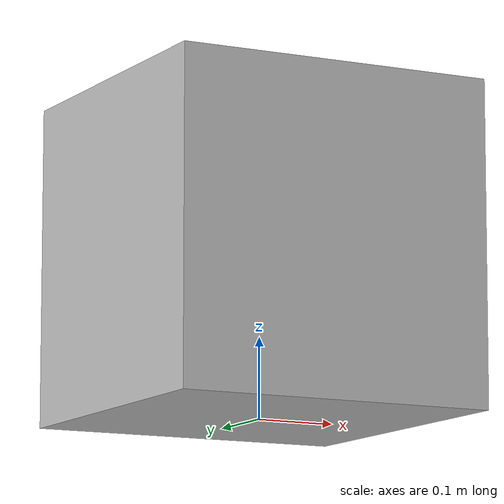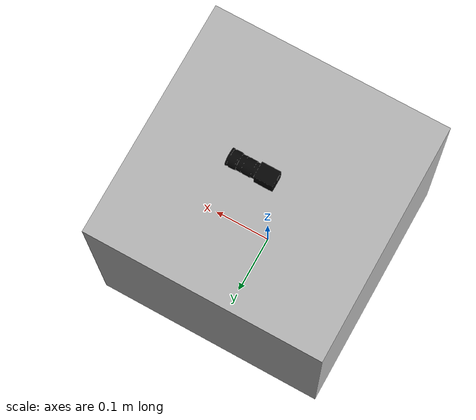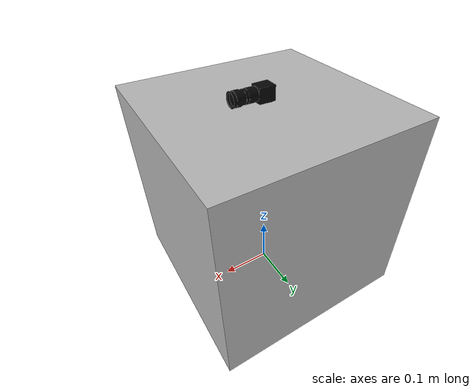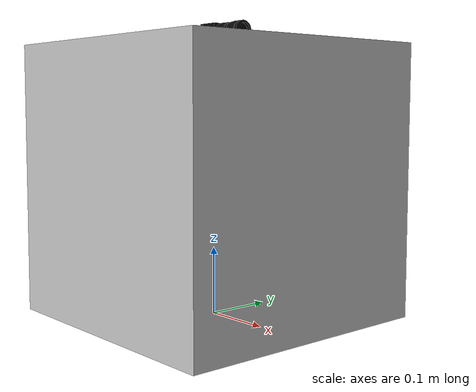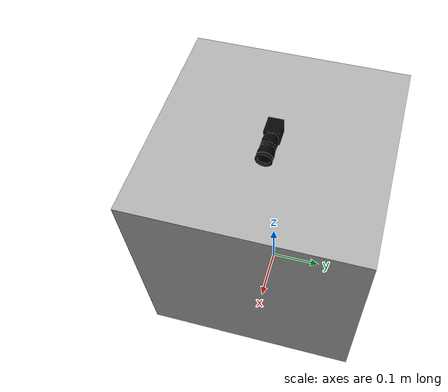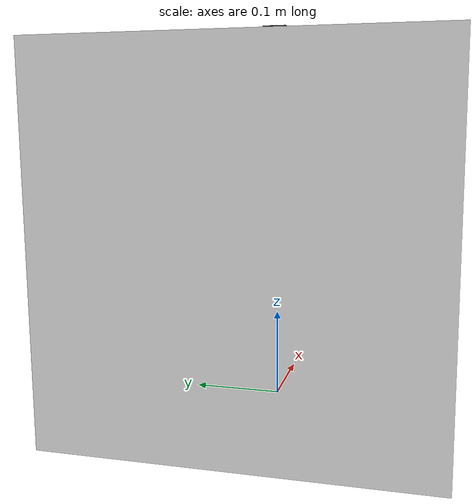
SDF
<?xml version="1.0" ?>
<!-- |    This document was autogenerated by xmacro from model.sdf.xmacro              | -->
<!-- |    EDITING THIS FILE BY HAND IS NOT RECOMMENDED                                 | -->
<sdf version="1.7">
	<!--xmacro_define_block: industrial_camera-->
	<model name="simple_industrial_camera">
		<pose>0 0 0.2 0 0 0</pose>
		<link name="base_link">
			<inertial>
				<mass>0.4</mass>
				<inertia>
					<ixx>0.01066666666666667</ixx>
					<ixy>0</ixy>
					<ixz>0</ixz>
					<iyy>0.01066666666666667</iyy>
					<iyz>0</iyz>
					<izz>0.01066666666666667</izz>
				</inertia>
			</inertial>
			<visual name="visual">
				<geometry>
					<box>
						<size>0.4 0.4 0.4</size>
					</box>
				</geometry>
			</visual>
			<collision name="collision">
				<geometry>
					<box>
						<size>0.4 0.4 0.4</size>
					</box>
				</geometry>
			</collision>
		</link>
		<joint name="simple_industrial_camera_joint" type="fixed">
			<pose relative_to="base_link">0 0 0.216 0 0 0</pose>
			<parent>base_link</parent>
			<child>simple_industrial_camera</child>
		</joint>
		<link name="simple_industrial_camera">
			<pose relative_to="simple_industrial_camera_joint">0 0 0 0 0 0</pose>
			<inertial>
				<pose>0.025 0 0 0 0 0</pose>
				<mass>0.05</mass>
				<inertia>
					<ixx>7.141666666666669e-06</ixx>
					<ixy>0</ixy>
					<ixz>0</ixz>
					<iyy>3.1204166666666675e-05</iyy>
					<iyz>0</iyz>
					<izz>2.9270833333333334e-05</izz>
				</inertia>
			</inertial>
			<visual name="visual">
				<geometry>
					<mesh>
						<uri>model://industrial_camera/meshes/industrial_camera.dae</uri>
					</mesh>
				</geometry>
			</visual>
			<collision name="collision">
				<pose>0.025 0 0 0 0 0</pose>
				<geometry>
					<box>
						<size>0.08 0.025 0.033</size>
					</box>
				</geometry>
			</collision>
			<sensor name="simple_industrial_camera" type="camera">
				<always_on>1</always_on>
				<update_rate>30.0</update_rate>
				<camera>
					<horizontal_fov>1.0</horizontal_fov>
					<image>
						<width>640.0</width>
						<height>480.0</height>
					</image>
					<clip>
						<near>0.1</near>
						<far>100</far>
					</clip>
				</camera>
			</sensor>
		</link>
	</model>
</sdf>
